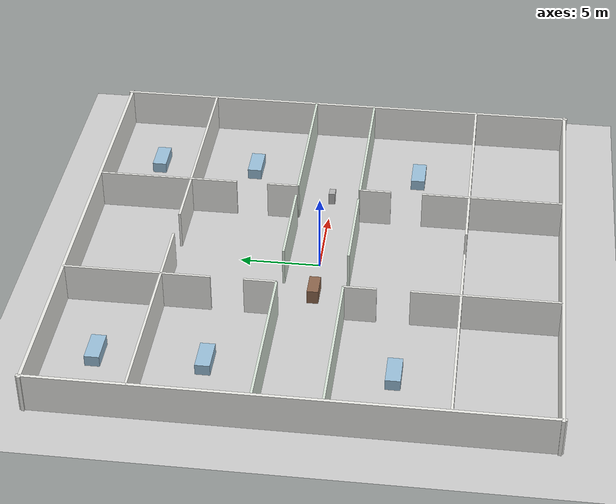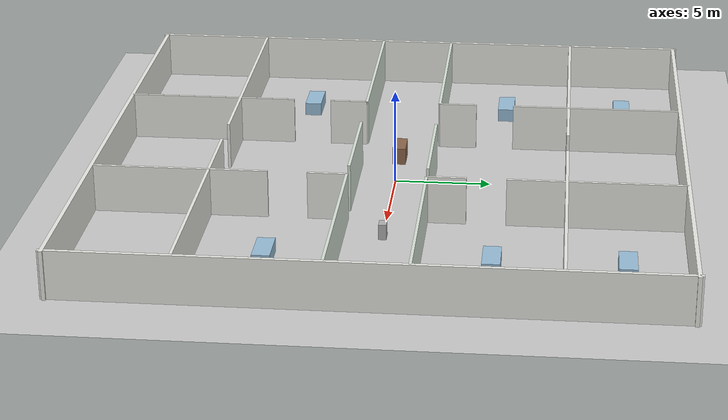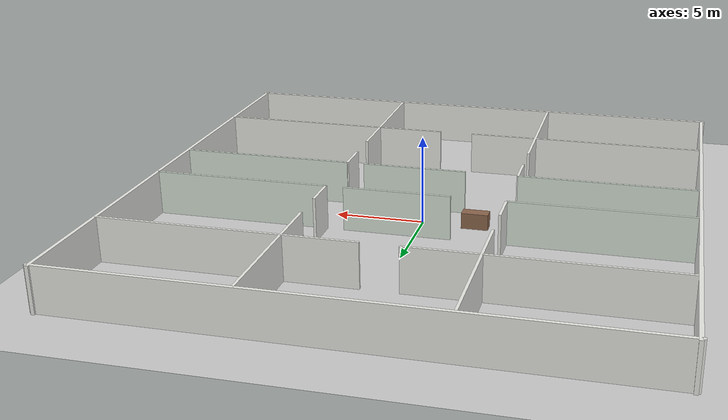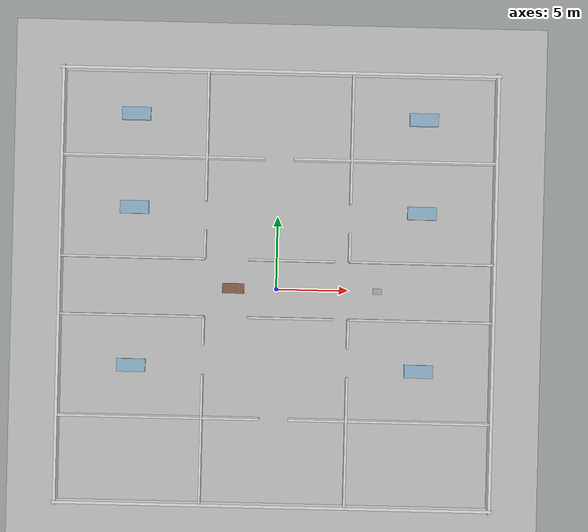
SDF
<?xml version="1.0"?>
<!--
  Hospital environment for Gazebo.
  Matches training scene: 30m x 30m, multi-room with corridors.
  Scene bounds: (-15, -15) to (15, 15) — same as scene_cfg.py HOSPITAL_SCENE.
-->
<sdf version="1.6">
  <world name="hospital">

    <include><uri>model://ground_plane</uri></include>
    <include><uri>model://sun</uri></include>

    <physics type="ode">
      <real_time_factor>1</real_time_factor>
      <max_step_size>0.001</max_step_size>
    </physics>

    <!-- ============ Outer Walls (30m x 30m) ============ -->
    <model name="wall_north">
      <static>true</static>
      <pose>0 15 1.25 0 0 0</pose>
      <link name="link">
        <collision name="c"><geometry><box><size>30.4 0.2 2.5</size></box></geometry></collision>
        <visual name="v"><geometry><box><size>30.4 0.2 2.5</size></box></geometry>
          <material><ambient>0.92 0.92 0.90 1</ambient></material></visual>
      </link>
    </model>

    <model name="wall_south">
      <static>true</static>
      <pose>0 -15 1.25 0 0 0</pose>
      <link name="link">
        <collision name="c"><geometry><box><size>30.4 0.2 2.5</size></box></geometry></collision>
        <visual name="v"><geometry><box><size>30.4 0.2 2.5</size></box></geometry>
          <material><ambient>0.92 0.92 0.90 1</ambient></material></visual>
      </link>
    </model>

    <model name="wall_east">
      <static>true</static>
      <pose>15 0 1.25 0 0 0</pose>
      <link name="link">
        <collision name="c"><geometry><box><size>0.2 30.4 2.5</size></box></geometry></collision>
        <visual name="v"><geometry><box><size>0.2 30.4 2.5</size></box></geometry>
          <material><ambient>0.92 0.92 0.90 1</ambient></material></visual>
      </link>
    </model>

    <model name="wall_west">
      <static>true</static>
      <pose>-15 0 1.25 0 0 0</pose>
      <link name="link">
        <collision name="c"><geometry><box><size>0.2 30.4 2.5</size></box></geometry></collision>
        <visual name="v"><geometry><box><size>0.2 30.4 2.5</size></box></geometry>
          <material><ambient>0.92 0.92 0.90 1</ambient></material></visual>
      </link>
    </model>

    <!-- ============ Main Corridor (east-west, y = -2 to 2) ============ -->

    <!-- North corridor wall at y=2 — three segments with two door gaps -->
    <model name="corr_n_left">
      <static>true</static>
      <pose>-10 2 1.25 0 0 0</pose>
      <link name="link">
        <collision name="c"><geometry><box><size>10 0.15 2.5</size></box></geometry></collision>
        <visual name="v"><geometry><box><size>10 0.15 2.5</size></box></geometry>
          <material><ambient>0.85 0.90 0.85 1</ambient></material></visual>
      </link>
    </model>

    <model name="corr_n_mid">
      <static>true</static>
      <pose>1 2 1.25 0 0 0</pose>
      <link name="link">
        <collision name="c"><geometry><box><size>6 0.15 2.5</size></box></geometry></collision>
        <visual name="v"><geometry><box><size>6 0.15 2.5</size></box></geometry>
          <material><ambient>0.85 0.90 0.85 1</ambient></material></visual>
      </link>
    </model>

    <model name="corr_n_right">
      <static>true</static>
      <pose>10 2 1.25 0 0 0</pose>
      <link name="link">
        <collision name="c"><geometry><box><size>10 0.15 2.5</size></box></geometry></collision>
        <visual name="v"><geometry><box><size>10 0.15 2.5</size></box></geometry>
          <material><ambient>0.85 0.90 0.85 1</ambient></material></visual>
      </link>
    </model>

    <!-- South corridor wall at y=-2 — mirror of north -->
    <model name="corr_s_left">
      <static>true</static>
      <pose>-10 -2 1.25 0 0 0</pose>
      <link name="link">
        <collision name="c"><geometry><box><size>10 0.15 2.5</size></box></geometry></collision>
        <visual name="v"><geometry><box><size>10 0.15 2.5</size></box></geometry>
          <material><ambient>0.85 0.90 0.85 1</ambient></material></visual>
      </link>
    </model>

    <model name="corr_s_mid">
      <static>true</static>
      <pose>1 -2 1.25 0 0 0</pose>
      <link name="link">
        <collision name="c"><geometry><box><size>6 0.15 2.5</size></box></geometry></collision>
        <visual name="v"><geometry><box><size>6 0.15 2.5</size></box></geometry>
          <material><ambient>0.85 0.90 0.85 1</ambient></material></visual>
      </link>
    </model>

    <model name="corr_s_right">
      <static>true</static>
      <pose>10 -2 1.25 0 0 0</pose>
      <link name="link">
        <collision name="c"><geometry><box><size>10 0.15 2.5</size></box></geometry></collision>
        <visual name="v"><geometry><box><size>10 0.15 2.5</size></box></geometry>
          <material><ambient>0.85 0.90 0.85 1</ambient></material></visual>
      </link>
    </model>

    <!-- ============ North-side Room Dividers ============ -->

    <!-- Vertical wall at x=-5, north wing (y 2→15) with door gap y 4→6 -->
    <model name="div_n1_lower">
      <static>true</static>
      <pose>-5 3 1.25 0 0 0</pose>
      <link name="link">
        <collision name="c"><geometry><box><size>0.15 2 2.5</size></box></geometry></collision>
        <visual name="v"><geometry><box><size>0.15 2 2.5</size></box></geometry>
          <material><ambient>0.92 0.92 0.90 1</ambient></material></visual>
      </link>
    </model>

    <model name="div_n1_upper">
      <static>true</static>
      <pose>-5 10.5 1.25 0 0 0</pose>
      <link name="link">
        <collision name="c"><geometry><box><size>0.15 9 2.5</size></box></geometry></collision>
        <visual name="v"><geometry><box><size>0.15 9 2.5</size></box></geometry>
          <material><ambient>0.92 0.92 0.90 1</ambient></material></visual>
      </link>
    </model>

    <!-- Vertical wall at x=5, north wing — with door gap y 4→6 -->
    <model name="div_n2_lower">
      <static>true</static>
      <pose>5 3 1.25 0 0 0</pose>
      <link name="link">
        <collision name="c"><geometry><box><size>0.15 2 2.5</size></box></geometry></collision>
        <visual name="v"><geometry><box><size>0.15 2 2.5</size></box></geometry>
          <material><ambient>0.92 0.92 0.90 1</ambient></material></visual>
      </link>
    </model>

    <model name="div_n2_upper">
      <static>true</static>
      <pose>5 10.5 1.25 0 0 0</pose>
      <link name="link">
        <collision name="c"><geometry><box><size>0.15 9 2.5</size></box></geometry></collision>
        <visual name="v"><geometry><box><size>0.15 9 2.5</size></box></geometry>
          <material><ambient>0.92 0.92 0.90 1</ambient></material></visual>
      </link>
    </model>

    <!-- Horizontal cross wall at y=9, north wing — two segments (door gap x -1→1) -->
    <model name="cross_n_left">
      <static>true</static>
      <pose>-8 9 1.25 0 0 0</pose>
      <link name="link">
        <collision name="c"><geometry><box><size>14 0.15 2.5</size></box></geometry></collision>
        <visual name="v"><geometry><box><size>14 0.15 2.5</size></box></geometry>
          <material><ambient>0.92 0.92 0.90 1</ambient></material></visual>
      </link>
    </model>

    <model name="cross_n_right">
      <static>true</static>
      <pose>8 9 1.25 0 0 0</pose>
      <link name="link">
        <collision name="c"><geometry><box><size>14 0.15 2.5</size></box></geometry></collision>
        <visual name="v"><geometry><box><size>14 0.15 2.5</size></box></geometry>
          <material><ambient>0.92 0.92 0.90 1</ambient></material></visual>
      </link>
    </model>

    <!-- ============ South-side Room Dividers (mirror) ============ -->

    <model name="div_s1_upper">
      <static>true</static>
      <pose>-5 -3 1.25 0 0 0</pose>
      <link name="link">
        <collision name="c"><geometry><box><size>0.15 2 2.5</size></box></geometry></collision>
        <visual name="v"><geometry><box><size>0.15 2 2.5</size></box></geometry>
          <material><ambient>0.92 0.92 0.90 1</ambient></material></visual>
      </link>
    </model>

    <model name="div_s1_lower">
      <static>true</static>
      <pose>-5 -10.5 1.25 0 0 0</pose>
      <link name="link">
        <collision name="c"><geometry><box><size>0.15 9 2.5</size></box></geometry></collision>
        <visual name="v"><geometry><box><size>0.15 9 2.5</size></box></geometry>
          <material><ambient>0.92 0.92 0.90 1</ambient></material></visual>
      </link>
    </model>

    <model name="div_s2_upper">
      <static>true</static>
      <pose>5 -3 1.25 0 0 0</pose>
      <link name="link">
        <collision name="c"><geometry><box><size>0.15 2 2.5</size></box></geometry></collision>
        <visual name="v"><geometry><box><size>0.15 2 2.5</size></box></geometry>
          <material><ambient>0.92 0.92 0.90 1</ambient></material></visual>
      </link>
    </model>

    <model name="div_s2_lower">
      <static>true</static>
      <pose>5 -10.5 1.25 0 0 0</pose>
      <link name="link">
        <collision name="c"><geometry><box><size>0.15 9 2.5</size></box></geometry></collision>
        <visual name="v"><geometry><box><size>0.15 9 2.5</size></box></geometry>
          <material><ambient>0.92 0.92 0.90 1</ambient></material></visual>
      </link>
    </model>

    <model name="cross_s_left">
      <static>true</static>
      <pose>-8 -9 1.25 0 0 0</pose>
      <link name="link">
        <collision name="c"><geometry><box><size>14 0.15 2.5</size></box></geometry></collision>
        <visual name="v"><geometry><box><size>14 0.15 2.5</size></box></geometry>
          <material><ambient>0.92 0.92 0.90 1</ambient></material></visual>
      </link>
    </model>

    <model name="cross_s_right">
      <static>true</static>
      <pose>8 -9 1.25 0 0 0</pose>
      <link name="link">
        <collision name="c"><geometry><box><size>14 0.15 2.5</size></box></geometry></collision>
        <visual name="v"><geometry><box><size>14 0.15 2.5</size></box></geometry>
          <material><ambient>0.92 0.92 0.90 1</ambient></material></visual>
      </link>
    </model>

    <!-- ============ Furniture / Obstacles ============ -->

    <!-- Patient beds (north wing rooms) -->
    <model name="bed_nw">
      <static>true</static>
      <pose>-10 5.5 0.35 0 0 0</pose>
      <link name="link">
        <collision name="c"><geometry><box><size>2.0 0.9 0.7</size></box></geometry></collision>
        <visual name="v"><geometry><box><size>2.0 0.9 0.7</size></box></geometry>
          <material><ambient>0.6 0.75 0.85 1</ambient></material></visual>
      </link>
    </model>

    <model name="bed_ne">
      <static>true</static>
      <pose>10 5.5 0.35 0 0 0</pose>
      <link name="link">
        <collision name="c"><geometry><box><size>2.0 0.9 0.7</size></box></geometry></collision>
        <visual name="v"><geometry><box><size>2.0 0.9 0.7</size></box></geometry>
          <material><ambient>0.6 0.75 0.85 1</ambient></material></visual>
      </link>
    </model>

    <model name="bed_nw_upper">
      <static>true</static>
      <pose>-10 12 0.35 0 0 0</pose>
      <link name="link">
        <collision name="c"><geometry><box><size>2.0 0.9 0.7</size></box></geometry></collision>
        <visual name="v"><geometry><box><size>2.0 0.9 0.7</size></box></geometry>
          <material><ambient>0.6 0.75 0.85 1</ambient></material></visual>
      </link>
    </model>

    <model name="bed_ne_upper">
      <static>true</static>
      <pose>10 12 0.35 0 0 0</pose>
      <link name="link">
        <collision name="c"><geometry><box><size>2.0 0.9 0.7</size></box></geometry></collision>
        <visual name="v"><geometry><box><size>2.0 0.9 0.7</size></box></geometry>
          <material><ambient>0.6 0.75 0.85 1</ambient></material></visual>
      </link>
    </model>

    <!-- Patient beds (south wing rooms) -->
    <model name="bed_sw">
      <static>true</static>
      <pose>-10 -5.5 0.35 0 0 0</pose>
      <link name="link">
        <collision name="c"><geometry><box><size>2.0 0.9 0.7</size></box></geometry></collision>
        <visual name="v"><geometry><box><size>2.0 0.9 0.7</size></box></geometry>
          <material><ambient>0.6 0.75 0.85 1</ambient></material></visual>
      </link>
    </model>

    <model name="bed_se">
      <static>true</static>
      <pose>10 -5.5 0.35 0 0 0</pose>
      <link name="link">
        <collision name="c"><geometry><box><size>2.0 0.9 0.7</size></box></geometry></collision>
        <visual name="v"><geometry><box><size>2.0 0.9 0.7</size></box></geometry>
          <material><ambient>0.6 0.75 0.85 1</ambient></material></visual>
      </link>
    </model>

    <!-- Nurse station (corridor) -->
    <model name="nurse_desk">
      <static>true</static>
      <pose>-3 0 0.45 0 0 0</pose>
      <link name="link">
        <collision name="c"><geometry><box><size>1.5 0.7 0.9</size></box></geometry></collision>
        <visual name="v"><geometry><box><size>1.5 0.7 0.9</size></box></geometry>
          <material><ambient>0.55 0.40 0.30 1</ambient></material></visual>
      </link>
    </model>

    <!-- Medical equipment cart -->
    <model name="cart">
      <static>true</static>
      <pose>7 0 0.4 0 0 0</pose>
      <link name="link">
        <collision name="c"><geometry><box><size>0.6 0.4 0.8</size></box></geometry></collision>
        <visual name="v"><geometry><box><size>0.6 0.4 0.8</size></box></geometry>
          <material><ambient>0.7 0.7 0.7 1</ambient></material></visual>
      </link>
    </model>

  </world>
</sdf>
